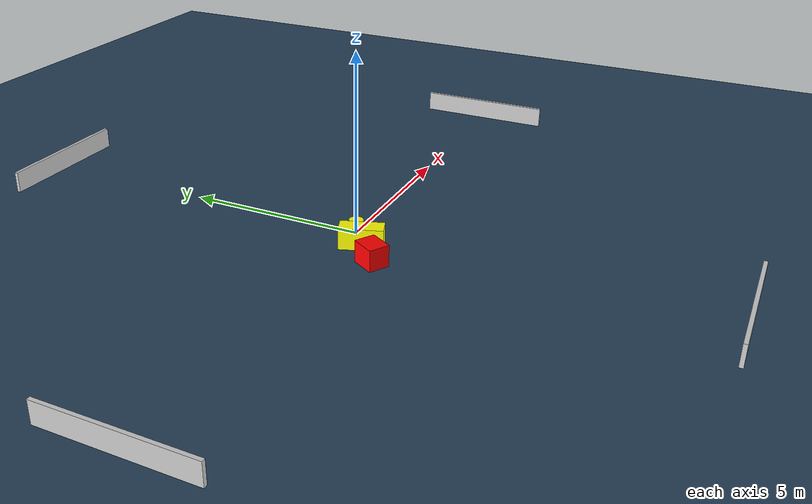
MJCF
<?xml version="1.0" ?>
<mujoco model="generated_environment">
  <option timestep="0.01" integrator="RK4" cone="elliptic"/>
  <default>
    <geom density="1"/>
  </default>
  <asset>
    <texture builtin="gradient" height="3072" name="skybox" rgb1="0.3 0.5 0.7" rgb2="0 0 0" type="skybox" width="512"/>
    <texture builtin="checker" height="300" name="groundplane" rgb1="0.2 0.3 0.4" rgb2="0.1 0.2 0.3" type="2d" width="300"/>
    <material name="groundplane" reflectance="0.2" texrepeat="5 5" texture="groundplane"/>
  </asset>
  <worldbody>
    <light dir="0 0 -1" directional="true" pos="0 0 1.5"/>
    <geom condim="3" friction="0.5 0.005 0.001" material="groundplane" name="floor" pos="0 0 0" size="0 0 0.05" type="plane"/>
    <body name="walls">
      <geom name="wall_1" condim="4" pos="-10.0 0.0 0.3" rgba="0.800000011920929 0.800000011920929 0.800000011920929 1.0" size="0.05 2.0 0.3" type="box"/>
      <geom name="wall_2" condim="4" pos="10.0 0.0 0.3" rgba="0.800000011920929 0.800000011920929 0.800000011920929 1.0" size="0.05 2.0 0.3" type="box"/>
      <geom name="wall_3" condim="4" pos="0.0 -10.0 0.3" rgba="0.800000011920929 0.800000011920929 0.800000011920929 1.0" size="2.0 0.05 0.3" type="box"/>
      <geom name="wall_4" condim="4" pos="0.0 10.0 0.3" rgba="0.800000011920929 0.800000011920929 0.800000011920929 1.0" size="2.0 0.05 0.3" type="box"/>
    </body>
    <body name="robot">
      <joint name="joint_x" type="slide" pos="0 0 0" axis="1 0 0"/>
      <joint name="joint_y" type="slide" pos="0 0 0" axis="0 1 0"/>
      <geom name="robot" type="cylinder" pos="0.0 0.0 0.2" size="0.2 0.2 0.0" mass="5.0" friction="1.0 0.005 0.0001" condim="4" rgba="1.0 1.0 0.0 1.0"/>
    </body>
    <body name="obstacle_1_movable">
      <geom name="obstacle_1_movable" condim="4" pos="-0.6206855141393229 -0.46056436191292494 0.3" euler="0 0 289.4506198908587" friction="0.0 0.005 0.001" rgba="1.0 1.0 0.0 1.0" size="0.5916931147188135 0.24594562943684703 0.3" type="box" mass="0.1"/>
      <joint type="free"/>
    </body>
    <body name="obstacle_2_static">
      <geom name="obstacle_2_static" condim="4" pos="-1.36072133556758 -1.107332335229827 0.3" euler="0 0 328.8779975762848" friction="0.0 0.005 0.001" rgba="1.0 0.0 0.0 1.0" size="0.2896107273417392 0.34473833311108515 0.3" type="box"/>
    </body>
  </worldbody>
  <actuator>
    <motor name="actuator_x" joint="joint_x" gear="1" ctrlrange="-1 1"/>
    <motor name="actuator_y" joint="joint_y" gear="1" ctrlrange="-1 1"/>
  </actuator>
</mujoco>
